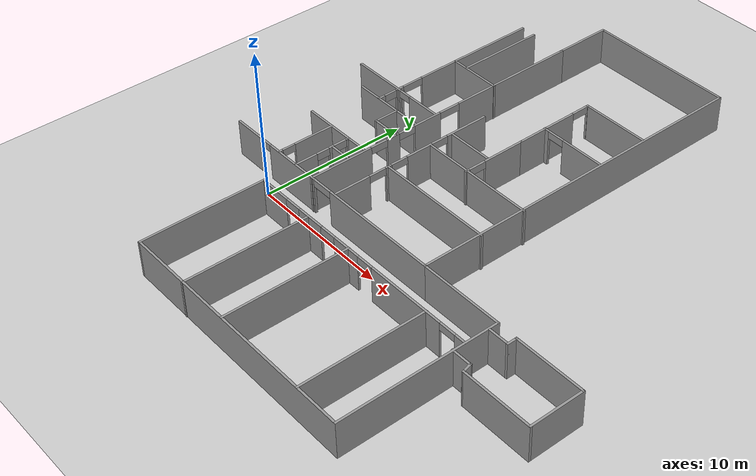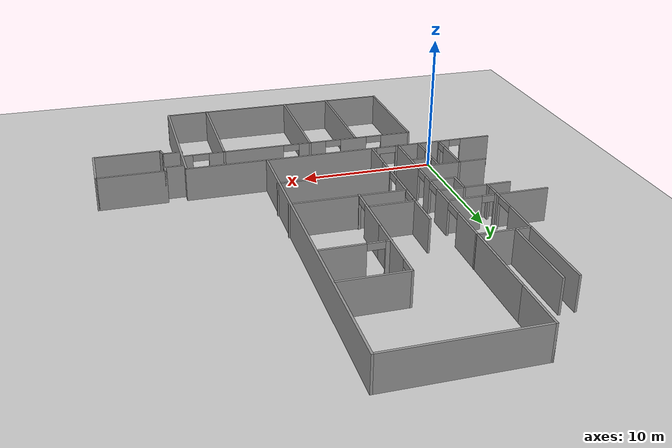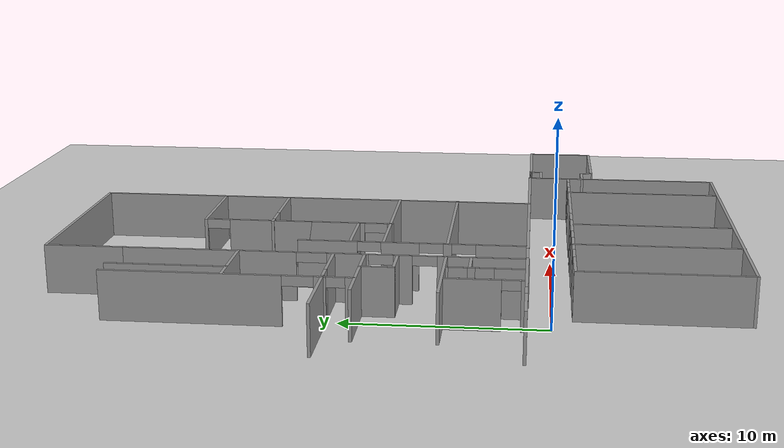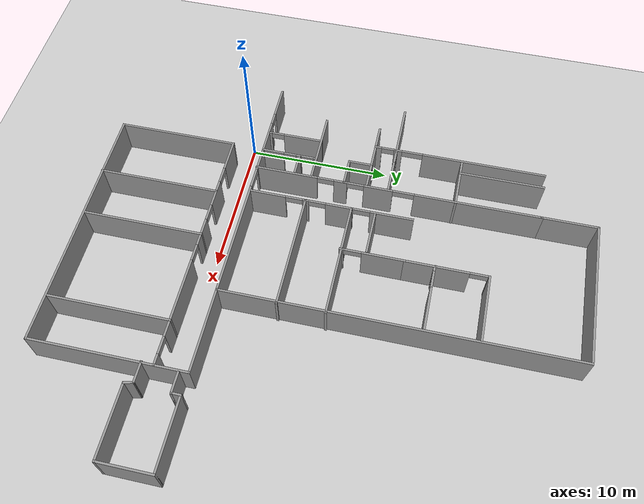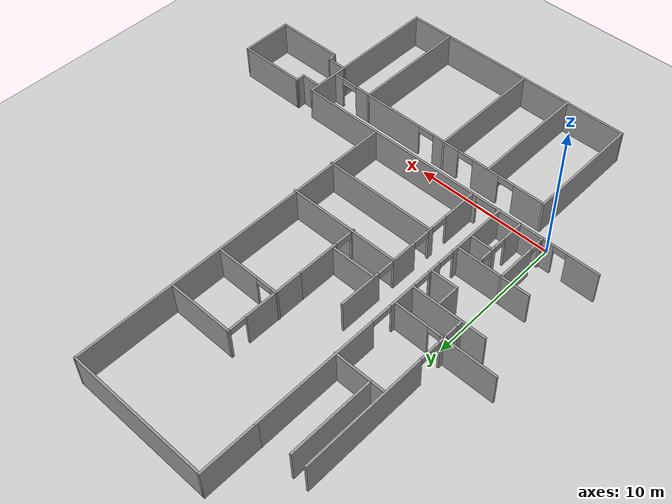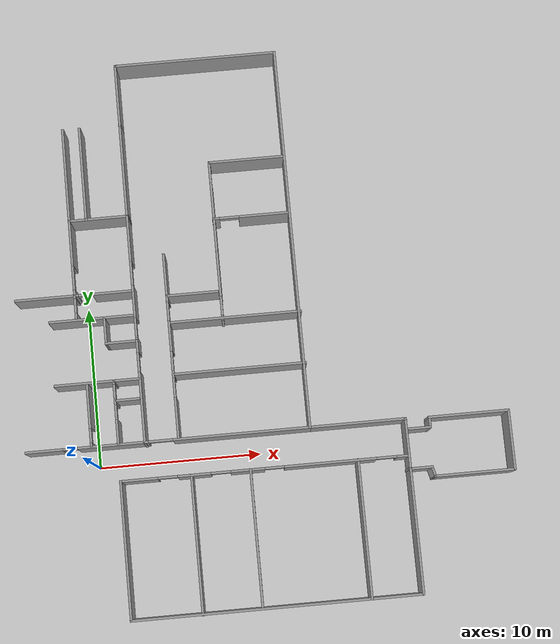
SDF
<sdf version="1.6">
 <world name="default">
  <model name="ground_plane">
   <static>1</static>
   <link name="link">
    <collision name="collision">
     <geometry><plane><normal>0 0 1</normal><size>100 100</size></plane></geometry>
     <surface><friction><ode><mu>100</mu><mu2>50</mu2></ode></friction></surface>
    </collision>
    <visual name="visual">
     <cast_shadows>0</cast_shadows>
     <geometry><plane><normal>0 0 1</normal><size>100 100</size></plane></geometry>
     <material>
      <script><uri>file://media/materials/scripts/gazebo.material</uri><name>Gazebo/Grey</name></script>
     </material>
    </visual>
   </link>
  </model>
  <model name="ed21">
   <pose>2.72337 5.84388 0 0 -0 0</pose>
   <link name="Wall_10">
    <pose>1.71748 -4.65158 0 0 -0 3.14159</pose>
    <visual name="Wall_10_Visual_0">
     <pose>-4.52425 0 1.25 0 -0 0</pose>
     <geometry><box><size>8.4515 0.15 2.5</size></box></geometry>
     <material>
      <script><uri>file://media/materials/scripts/gazebo.material</uri><name>Gazebo/Grey</name></script>
      <ambient>1 1 1 1</ambient>
     </material>
     <meta><layer>0</layer></meta>
    </visual>
    <collision name="Wall_10_Collision_0">
     <geometry><box><size>8.4515 0.15 2.5</size></box></geometry>
     <pose>-4.52425 0 1.25 0 -0 0</pose>
    </collision>
    <visual name="Wall_10_Visual_1">
     <pose>3.36672 0 1.25 0 -0 0</pose>
     <geometry><box><size>4.33043 0.15 2.5</size></box></geometry>
     <material>
      <script><uri>file://media/materials/scripts/gazebo.material</uri><name>Gazebo/Grey</name></script>
      <ambient>1 1 1 1</ambient>
     </material>
     <meta><layer>0</layer></meta>
    </visual>
    <collision name="Wall_10_Collision_1">
     <geometry><box><size>4.33043 0.15 2.5</size></box></geometry>
     <pose>3.36672 0 1.25 0 -0 0</pose>
    </collision>
    <visual name="Wall_10_Visual_2">
     <pose>7.59097 0 1.25 0 -0 0</pose>
     <geometry><box><size>2.31806 0.15 2.5</size></box></geometry>
     <material>
      <script><uri>file://media/materials/scripts/gazebo.material</uri><name>Gazebo/Grey</name></script>
      <ambient>1 1 1 1</ambient>
     </material>
     <meta><layer>0</layer></meta>
    </visual>
    <collision name="Wall_10_Collision_2">
     <geometry><box><size>2.31806 0.15 2.5</size></box></geometry>
     <pose>7.59097 0 1.25 0 -0 0</pose>
    </collision>
    <visual name="Wall_10_Visual_3">
     <pose>0.451502 0 2.25 0 -0 0</pose>
     <geometry><box><size>1.5 0.15 0.5</size></box></geometry>
     <material>
      <script><uri>file://media/materials/scripts/gazebo.material</uri><name>Gazebo/Grey</name></script>
      <ambient>1 1 1 1</ambient>
     </material>
     <meta><layer>0</layer></meta>
    </visual>
    <collision name="Wall_10_Collision_3">
     <geometry><box><size>1.5 0.15 0.5</size></box></geometry>
     <pose>0.451502 0 2.25 0 -0 0</pose>
    </collision>
    <visual name="Wall_10_Visual_4">
     <pose>5.98194 0 2.25 0 -0 0</pose>
     <geometry><box><size>0.9 0.15 0.5</size></box></geometry>
     <material>
      <script><uri>file://media/materials/scripts/gazebo.material</uri><name>Gazebo/Grey</name></script>
      <ambient>1 1 1 1</ambient>
     </material>
     <meta><layer>0</layer></meta>
    </visual>
    <collision name="Wall_10_Collision_4">
     <geometry><box><size>0.9 0.15 0.5</size></box></geometry>
     <pose>5.98194 0 2.25 0 -0 0</pose>
    </collision>
   </link>
   <link name="Wall_101">
    <collision name="Wall_101_Collision">
     <geometry><box><size>5.25 0.15 2.5</size></box></geometry>
     <pose>0 0 1.25 0 -0 0</pose>
    </collision>
    <visual name="Wall_101_Visual">
     <pose>0 0 1.25 0 -0 0</pose>
     <geometry><box><size>5.25 0.15 2.5</size></box></geometry>
     <material>
      <script><uri>file://media/materials/scripts/gazebo.material</uri><name>Gazebo/Grey</name></script>
      <ambient>1 1 1 1</ambient>
     </material>
     <meta><layer>0</layer></meta>
    </visual>
    <pose>-2.36942 -0.737011 0 0 -0 0</pose>
   </link>
   <link name="Wall_103">
    <pose>-1.31646 -2.66201 0 0 0 -1.5708</pose>
    <visual name="Wall_103_Visual_0">
     <pose>-1.85926 0 1.25 0 -0 0</pose>
     <geometry><box><size>0.281471 0.15 2.5</size></box></geometry>
     <material>
      <script><uri>file://media/materials/scripts/gazebo.material</uri><name>Gazebo/Grey</name></script>
      <ambient>1 1 1 1</ambient>
     </material>
     <meta><layer>0</layer></meta>
    </visual>
    <collision name="Wall_103_Collision_0">
     <geometry><box><size>0.281471 0.15 2.5</size></box></geometry>
     <pose>-1.85926 0 1.25 0 -0 0</pose>
    </collision>
    <visual name="Wall_103_Visual_1">
     <pose>-0.633747 0 1.25 0 -0 0</pose>
     <geometry><box><size>0.369565 0.15 2.5</size></box></geometry>
     <material>
      <script><uri>file://media/materials/scripts/gazebo.material</uri><name>Gazebo/Grey</name></script>
      <ambient>1 1 1 1</ambient>
     </material>
     <meta><layer>0</layer></meta>
    </visual>
    <collision name="Wall_103_Collision_1">
     <geometry><box><size>0.369565 0.15 2.5</size></box></geometry>
     <pose>-0.633747 0 1.25 0 -0 0</pose>
    </collision>
    <visual name="Wall_103_Visual_2">
     <pose>1.22552 0 1.25 0 -0 0</pose>
     <geometry><box><size>1.54896 0.15 2.5</size></box></geometry>
     <material>
      <script><uri>file://media/materials/scripts/gazebo.material</uri><name>Gazebo/Grey</name></script>
      <ambient>1 1 1 1</ambient>
     </material>
     <meta><layer>0</layer></meta>
    </visual>
    <collision name="Wall_103_Collision_2">
     <geometry><box><size>1.54896 0.15 2.5</size></box></geometry>
     <pose>1.22552 0 1.25 0 -0 0</pose>
    </collision>
    <visual name="Wall_103_Visual_3">
     <pose>-1.26853 0 2.25 0 -0 0</pose>
     <geometry><box><size>0.9 0.15 0.5</size></box></geometry>
     <material>
      <script><uri>file://media/materials/scripts/gazebo.material</uri><name>Gazebo/Grey</name></script>
      <ambient>1 1 1 1</ambient>
     </material>
     <meta><layer>0</layer></meta>
    </visual>
    <collision name="Wall_103_Collision_3">
     <geometry><box><size>0.9 0.15 0.5</size></box></geometry>
     <pose>-1.26853 0 2.25 0 -0 0</pose>
    </collision>
    <visual name="Wall_103_Visual_4">
     <pose>0.001036 0 2.25 0 -0 0</pose>
     <geometry><box><size>0.9 0.15 0.5</size></box></geometry>
     <material>
      <script><uri>file://media/materials/scripts/gazebo.material</uri><name>Gazebo/Grey</name></script>
      <ambient>1 1 1 1</ambient>
     </material>
     <meta><layer>0</layer></meta>
    </visual>
    <collision name="Wall_103_Collision_4">
     <geometry><box><size>0.9 0.15 0.5</size></box></geometry>
     <pose>0.001036 0 2.25 0 -0 0</pose>
    </collision>
   </link>
   <link name="Wall_105">
    <collision name="Wall_105_Collision">
     <geometry><box><size>1.5 0.15 2.5</size></box></geometry>
     <pose>0 0 1.25 0 -0 0</pose>
    </collision>
    <visual name="Wall_105_Visual">
     <pose>0 0 1.25 0 -0 0</pose>
     <geometry><box><size>1.5 0.15 2.5</size></box></geometry>
     <material>
      <script><uri>file://media/materials/scripts/gazebo.material</uri><name>Gazebo/Grey</name></script>
      <ambient>1 1 1 1</ambient>
     </material>
     <meta><layer>0</layer></meta>
    </visual>
    <pose>-0.536524 -1.96132 0 0 -0 0</pose>
   </link>
   <link name="Wall_107">
    <pose>-2.96053 -2.66201 0 0 0 -1.5708</pose>
    <visual name="Wall_107_Visual_0">
     <pose>-0.577397 0 1.25 0 -0 0</pose>
     <geometry><box><size>2.84521 0.15 2.5</size></box></geometry>
     <material>
      <script><uri>file://media/materials/scripts/gazebo.material</uri><name>Gazebo/Grey</name></script>
      <ambient>1 1 1 1</ambient>
     </material>
     <meta><layer>0</layer></meta>
    </visual>
    <collision name="Wall_107_Collision_0">
     <geometry><box><size>2.84521 0.15 2.5</size></box></geometry>
     <pose>-0.577397 0 1.25 0 -0 0</pose>
    </collision>
    <visual name="Wall_107_Visual_1">
     <pose>1.8726 0 1.25 0 -0 0</pose>
     <geometry><box><size>0.254794 0.15 2.5</size></box></geometry>
     <material>
      <script><uri>file://media/materials/scripts/gazebo.material</uri><name>Gazebo/Grey</name></script>
      <ambient>1 1 1 1</ambient>
     </material>
     <meta><layer>0</layer></meta>
    </visual>
    <collision name="Wall_107_Collision_1">
     <geometry><box><size>0.254794 0.15 2.5</size></box></geometry>
     <pose>1.8726 0 1.25 0 -0 0</pose>
    </collision>
    <visual name="Wall_107_Visual_2">
     <pose>1.29521 0 2.25 0 -0 0</pose>
     <geometry><box><size>0.9 0.15 0.5</size></box></geometry>
     <material>
      <script><uri>file://media/materials/scripts/gazebo.material</uri><name>Gazebo/Grey</name></script>
      <ambient>1 1 1 1</ambient>
     </material>
     <meta><layer>0</layer></meta>
    </visual>
    <collision name="Wall_107_Collision_2">
     <geometry><box><size>0.9 0.15 0.5</size></box></geometry>
     <pose>1.29521 0 2.25 0 -0 0</pose>
    </collision>
   </link>
   <link name="Wall_113">
    <collision name="Wall_113_Collision">
     <geometry><box><size>1.5 0.15 2.5</size></box></geometry>
     <pose>0 0 1.25 0 -0 0</pose>
    </collision>
    <visual name="Wall_113_Visual">
     <pose>0 0 1.25 0 -0 0</pose>
     <geometry><box><size>1.5 0.15 2.5</size></box></geometry>
     <material>
      <script><uri>file://media/materials/scripts/gazebo.material</uri><name>Gazebo/Grey</name></script>
      <ambient>1 1 1 1</ambient>
     </material>
     <meta><layer>0</layer></meta>
    </visual>
    <pose>17.0325 -5.30032 0 0 -0 0</pose>
   </link>
   <link name="Wall_114">
    <collision name="Wall_114_Collision">
     <geometry><box><size>0.75 0.15 2.5</size></box></geometry>
     <pose>0 0 1.25 0 -0 0</pose>
    </collision>
    <visual name="Wall_114_Visual">
     <pose>0 0 1.25 0 -0 0</pose>
     <geometry><box><size>0.75 0.15 2.5</size></box></geometry>
     <material>
      <script><uri>file://media/materials/scripts/gazebo.material</uri><name>Gazebo/Grey</name></script>
      <ambient>1 1 1 1</ambient>
     </material>
     <meta><layer>0</layer></meta>
    </visual>
    <pose>17.7075 -5.00033 0 0 -0 1.5708</pose>
   </link>
   <link name="Wall_115">
    <collision name="Wall_115_Collision">
     <geometry><box><size>5 0.15 2.5</size></box></geometry>
     <pose>0 0 1.25 0 -0 0</pose>
    </collision>
    <visual name="Wall_115_Visual">
     <pose>0 0 1.25 0 -0 0</pose>
     <geometry><box><size>5 0.15 2.5</size></box></geometry>
     <material>
      <script><uri>file://media/materials/scripts/gazebo.material</uri><name>Gazebo/Grey</name></script>
      <ambient>1 1 1 1</ambient>
     </material>
     <meta><layer>0</layer></meta>
    </visual>
    <pose>20.1325 -4.70033 0 0 -0 0</pose>
   </link>
   <link name="Wall_116">
    <collision name="Wall_116_Collision">
     <geometry><box><size>3.75 0.15 2.5</size></box></geometry>
     <pose>0 0 1.25 0 -0 0</pose>
    </collision>
    <visual name="Wall_116_Visual">
     <pose>0 0 1.25 0 -0 0</pose>
     <geometry><box><size>3.75 0.15 2.5</size></box></geometry>
     <material>
      <script><uri>file://media/materials/scripts/gazebo.material</uri><name>Gazebo/Grey</name></script>
      <ambient>1 1 1 1</ambient>
     </material>
     <meta><layer>0</layer></meta>
    </visual>
    <pose>22.5575 -6.50033 0 0 0 -1.5708</pose>
   </link>
   <link name="Wall_12">
    <collision name="Wall_12_Collision">
     <geometry><box><size>6 0.15 2.5</size></box></geometry>
     <pose>0 0 1.25 0 -0 0</pose>
    </collision>
    <visual name="Wall_12_Visual">
     <pose>0 0 1.25 0 -0 0</pose>
     <geometry><box><size>6 0.15 2.5</size></box></geometry>
     <material>
      <script><uri>file://media/materials/scripts/gazebo.material</uri><name>Gazebo/Grey</name></script>
      <ambient>1 1 1 1</ambient>
     </material>
     <meta><layer>0</layer></meta>
    </visual>
    <pose>13.3175 -4.65158 0 0 -0 0</pose>
   </link>
   <link name="Wall_120">
    <collision name="Wall_120_Collision">
     <geometry><box><size>5 0.15 2.5</size></box></geometry>
     <pose>0 0 1.25 0 -0 0</pose>
    </collision>
    <visual name="Wall_120_Visual">
     <pose>0 0 1.25 0 -0 0</pose>
     <geometry><box><size>5 0.15 2.5</size></box></geometry>
     <material>
      <script><uri>file://media/materials/scripts/gazebo.material</uri><name>Gazebo/Grey</name></script>
      <ambient>1 1 1 1</ambient>
     </material>
     <meta><layer>0</layer></meta>
    </visual>
    <pose>20.1325 -8.30033 0 0 -0 3.14159</pose>
   </link>
   <link name="Wall_121">
    <collision name="Wall_121_Collision">
     <geometry><box><size>0.75 0.15 2.5</size></box></geometry>
     <pose>0 0 1.25 0 -0 0</pose>
    </collision>
    <visual name="Wall_121_Visual">
     <pose>0 0 1.25 0 -0 0</pose>
     <geometry><box><size>0.75 0.15 2.5</size></box></geometry>
     <material>
      <script><uri>file://media/materials/scripts/gazebo.material</uri><name>Gazebo/Grey</name></script>
      <ambient>1 1 1 1</ambient>
     </material>
     <meta><layer>0</layer></meta>
    </visual>
    <pose>17.6299 -8.01055 0 0 -0 1.8326</pose>
   </link>
   <link name="Wall_122">
    <collision name="Wall_122_Collision">
     <geometry><box><size>1.5 0.15 2.5</size></box></geometry>
     <pose>0 0 1.25 0 -0 0</pose>
    </collision>
    <visual name="Wall_122_Visual">
     <pose>0 0 1.25 0 -0 0</pose>
     <geometry><box><size>1.5 0.15 2.5</size></box></geometry>
     <material>
      <script><uri>file://media/materials/scripts/gazebo.material</uri><name>Gazebo/Grey</name></script>
      <ambient>1 1 1 1</ambient>
     </material>
     <meta><layer>0</layer></meta>
    </visual>
    <pose>16.8772 -7.72077 0 0 -0 3.14159</pose>
   </link>
   <link name="Wall_13">
    <collision name="Wall_13_Collision">
     <geometry><box><size>10.75 0.15 2.5</size></box></geometry>
     <pose>0 0 1.25 0 -0 0</pose>
    </collision>
    <visual name="Wall_13_Visual">
     <pose>0 0 1.25 0 -0 0</pose>
     <geometry><box><size>10.75 0.15 2.5</size></box></geometry>
     <material>
      <script><uri>file://media/materials/scripts/gazebo.material</uri><name>Gazebo/Grey</name></script>
      <ambient>1 1 1 1</ambient>
     </material>
     <meta><layer>0</layer></meta>
    </visual>
    <pose>16.2425 -9.95158 0 0 0 -1.5708</pose>
   </link>
   <link name="Wall_14">
    <collision name="Wall_14_Collision">
     <geometry><box><size>17.75 0.15 2.5</size></box></geometry>
     <pose>0 0 1.25 0 -0 0</pose>
    </collision>
    <visual name="Wall_14_Visual">
     <pose>0 0 1.25 0 -0 0</pose>
     <geometry><box><size>17.75 0.15 2.5</size></box></geometry>
     <material>
      <script><uri>file://media/materials/scripts/gazebo.material</uri><name>Gazebo/Grey</name></script>
      <ambient>1 1 1 1</ambient>
     </material>
     <meta><layer>0</layer></meta>
    </visual>
    <pose>7.44248 -15.2516 0 0 -0 3.14159</pose>
   </link>
   <link name="Wall_15">
    <collision name="Wall_15_Collision">
     <geometry><box><size>8.50066 0.15 2.5</size></box></geometry>
     <pose>0 0 1.25 0 -0 0</pose>
    </collision>
    <visual name="Wall_15_Visual">
     <pose>0 0 1.25 0 -0 0</pose>
     <geometry><box><size>8.50066 0.15 2.5</size></box></geometry>
     <material>
      <script><uri>file://media/materials/scripts/gazebo.material</uri><name>Gazebo/Grey</name></script>
      <ambient>1 1 1 1</ambient>
     </material>
     <meta><layer>0</layer></meta>
    </visual>
    <pose>-1.35752 -11.0766 0 0 -0 1.5708</pose>
   </link>
   <link name="Wall_16">
    <pose>7.44248 -6.90158 0 0 -0 0</pose>
    <visual name="Wall_16_Visual_0">
     <pose>-7.70401 0 1.25 0 -0 0</pose>
     <geometry><box><size>2.34198 0.15 2.5</size></box></geometry>
     <material>
      <script><uri>file://media/materials/scripts/gazebo.material</uri><name>Gazebo/Grey</name></script>
      <ambient>1 1 1 1</ambient>
     </material>
     <meta><layer>0</layer></meta>
    </visual>
    <collision name="Wall_16_Collision_0">
     <geometry><box><size>2.34198 0.15 2.5</size></box></geometry>
     <pose>-7.70401 0 1.25 0 -0 0</pose>
    </collision>
    <visual name="Wall_16_Visual_1">
     <pose>-4.31563 0 1.25 0 -0 0</pose>
     <geometry><box><size>2.03478 0.15 2.5</size></box></geometry>
     <material>
      <script><uri>file://media/materials/scripts/gazebo.material</uri><name>Gazebo/Grey</name></script>
      <ambient>1 1 1 1</ambient>
     </material>
     <meta><layer>0</layer></meta>
    </visual>
    <collision name="Wall_16_Collision_1">
     <geometry><box><size>2.03478 0.15 2.5</size></box></geometry>
     <pose>-4.31563 0 1.25 0 -0 0</pose>
    </collision>
    <visual name="Wall_16_Visual_2">
     <pose>-1.05511 0 1.25 0 -0 0</pose>
     <geometry><box><size>2.08626 0.15 2.5</size></box></geometry>
     <material>
      <script><uri>file://media/materials/scripts/gazebo.material</uri><name>Gazebo/Grey</name></script>
      <ambient>1 1 1 1</ambient>
     </material>
     <meta><layer>0</layer></meta>
    </visual>
    <collision name="Wall_16_Collision_2">
     <geometry><box><size>2.08626 0.15 2.5</size></box></geometry>
     <pose>-1.05511 0 1.25 0 -0 0</pose>
    </collision>
    <visual name="Wall_16_Visual_3">
     <pose>4.01135 0 1.25 0 -0 0</pose>
     <geometry><box><size>5.64666 0.15 2.5</size></box></geometry>
     <material>
      <script><uri>file://media/materials/scripts/gazebo.material</uri><name>Gazebo/Grey</name></script>
      <ambient>1 1 1 1</ambient>
     </material>
     <meta><layer>0</layer></meta>
    </visual>
    <collision name="Wall_16_Collision_3">
     <geometry><box><size>5.64666 0.15 2.5</size></box></geometry>
     <pose>4.01135 0 1.25 0 -0 0</pose>
    </collision>
    <visual name="Wall_16_Visual_4">
     <pose>8.45484 0 1.25 0 -0 0</pose>
     <geometry><box><size>0.840318 0.15 2.5</size></box></geometry>
     <material>
      <script><uri>file://media/materials/scripts/gazebo.material</uri><name>Gazebo/Grey</name></script>
      <ambient>1 1 1 1</ambient>
     </material>
     <meta><layer>0</layer></meta>
    </visual>
    <collision name="Wall_16_Collision_4">
     <geometry><box><size>0.840318 0.15 2.5</size></box></geometry>
     <pose>8.45484 0 1.25 0 -0 0</pose>
    </collision>
    <visual name="Wall_16_Visual_5">
     <pose>-5.93302 0 2.25 0 -0 0</pose>
     <geometry><box><size>1.2 0.15 0.5</size></box></geometry>
     <material>
      <script><uri>file://media/materials/scripts/gazebo.material</uri><name>Gazebo/Grey</name></script>
      <ambient>1 1 1 1</ambient>
     </material>
     <meta><layer>0</layer></meta>
    </visual>
    <collision name="Wall_16_Collision_5">
     <geometry><box><size>1.2 0.15 0.5</size></box></geometry>
     <pose>-5.93302 0 2.25 0 -0 0</pose>
    </collision>
    <visual name="Wall_16_Visual_6">
     <pose>-2.69824 0 2.25 0 -0 0</pose>
     <geometry><box><size>1.2 0.15 0.5</size></box></geometry>
     <material>
      <script><uri>file://media/materials/scripts/gazebo.material</uri><name>Gazebo/Grey</name></script>
      <ambient>1 1 1 1</ambient>
     </material>
     <meta><layer>0</layer></meta>
    </visual>
    <collision name="Wall_16_Collision_6">
     <geometry><box><size>1.2 0.15 0.5</size></box></geometry>
     <pose>-2.69824 0 2.25 0 -0 0</pose>
    </collision>
    <visual name="Wall_16_Visual_7">
     <pose>0.588022 0 2.25 0 -0 0</pose>
     <geometry><box><size>1.2 0.15 0.5</size></box></geometry>
     <material>
      <script><uri>file://media/materials/scripts/gazebo.material</uri><name>Gazebo/Grey</name></script>
      <ambient>1 1 1 1</ambient>
     </material>
     <meta><layer>0</layer></meta>
    </visual>
    <collision name="Wall_16_Collision_7">
     <geometry><box><size>1.2 0.15 0.5</size></box></geometry>
     <pose>0.588022 0 2.25 0 -0 0</pose>
    </collision>
    <visual name="Wall_16_Visual_8">
     <pose>7.43468 0 2.25 0 -0 0</pose>
     <geometry><box><size>1.2 0.15 0.5</size></box></geometry>
     <material>
      <script><uri>file://media/materials/scripts/gazebo.material</uri><name>Gazebo/Grey</name></script>
      <ambient>1 1 1 1</ambient>
     </material>
     <meta><layer>0</layer></meta>
    </visual>
    <collision name="Wall_16_Collision_8">
     <geometry><box><size>1.2 0.15 0.5</size></box></geometry>
     <pose>7.43468 0 2.25 0 -0 0</pose>
    </collision>
   </link>
   <link name="Wall_25">
    <collision name="Wall_25_Collision">
     <geometry><box><size>8.5 0.15 2.5</size></box></geometry>
     <pose>0 0 1.25 0 -0 0</pose>
    </collision>
    <visual name="Wall_25_Visual">
     <pose>0 0 1.25 0 -0 0</pose>
     <geometry><box><size>8.5 0.15 2.5</size></box></geometry>
     <material>
      <script><uri>file://media/materials/scripts/gazebo.material</uri><name>Gazebo/Grey</name></script>
      <ambient>1 1 1 1</ambient>
     </material>
     <meta><layer>0</layer></meta>
    </visual>
    <pose>2.95111 -11.1035 0 0 0 -1.5708</pose>
   </link>
   <link name="Wall_27">
    <collision name="Wall_27_Collision">
     <geometry><box><size>8.5 0.15 2.5</size></box></geometry>
     <pose>0 0 1.25 0 -0 0</pose>
    </collision>
    <visual name="Wall_27_Visual">
     <pose>0 0 1.25 0 -0 0</pose>
     <geometry><box><size>8.5 0.15 2.5</size></box></geometry>
     <material>
      <script><uri>file://media/materials/scripts/gazebo.material</uri><name>Gazebo/Grey</name></script>
      <ambient>1 1 1 1</ambient>
     </material>
     <meta><layer>0</layer></meta>
    </visual>
    <pose>6.55406 -11.0685 0 0 0 -1.5708</pose>
   </link>
   <link name="Wall_29">
    <collision name="Wall_29_Collision">
     <geometry><box><size>8.5 0.15 2.5</size></box></geometry>
     <pose>0 0 1.25 0 -0 0</pose>
    </collision>
    <visual name="Wall_29_Visual">
     <pose>0 0 1.25 0 -0 0</pose>
     <geometry><box><size>8.5 0.15 2.5</size></box></geometry>
     <material>
      <script><uri>file://media/materials/scripts/gazebo.material</uri><name>Gazebo/Grey</name></script>
      <ambient>1 1 1 1</ambient>
     </material>
     <meta><layer>0</layer></meta>
    </visual>
    <pose>13.1303 -11.0685 0 0 0 -1.5708</pose>
   </link>
   <link name="Wall_56">
    <pose>5.67212 9.6187 0 0 -0 1.5708</pose>
    <visual name="Wall_56_Visual_0">
     <pose>-0.683725 0 1.25 0 -0 0</pose>
     <geometry><box><size>4.38255 0.15 2.5</size></box></geometry>
     <material>
      <script><uri>file://media/materials/scripts/gazebo.material</uri><name>Gazebo/Grey</name></script>
      <ambient>1 1 1 1</ambient>
     </material>
     <meta><layer>0</layer></meta>
    </visual>
    <collision name="Wall_56_Collision_0">
     <geometry><box><size>4.38255 0.15 2.5</size></box></geometry>
     <pose>-0.683725 0 1.25 0 -0 0</pose>
    </collision>
    <visual name="Wall_56_Visual_1">
     <pose>2.79128 0 1.25 0 -0 0</pose>
     <geometry><box><size>0.16745 0.15 2.5</size></box></geometry>
     <material>
      <script><uri>file://media/materials/scripts/gazebo.material</uri><name>Gazebo/Grey</name></script>
      <ambient>1 1 1 1</ambient>
     </material>
     <meta><layer>0</layer></meta>
    </visual>
    <collision name="Wall_56_Collision_1">
     <geometry><box><size>0.16745 0.15 2.5</size></box></geometry>
     <pose>2.79128 0 1.25 0 -0 0</pose>
    </collision>
    <visual name="Wall_56_Visual_2">
     <pose>2.10755 0 2.25 0 -0 0</pose>
     <geometry><box><size>1.2 0.15 0.5</size></box></geometry>
     <material>
      <script><uri>file://media/materials/scripts/gazebo.material</uri><name>Gazebo/Grey</name></script>
      <ambient>1 1 1 1</ambient>
     </material>
     <meta><layer>0</layer></meta>
    </visual>
    <collision name="Wall_56_Collision_2">
     <geometry><box><size>1.2 0.15 0.5</size></box></geometry>
     <pose>2.10755 0 2.25 0 -0 0</pose>
    </collision>
   </link>
   <link name="Wall_57">
    <collision name="Wall_57_Collision">
     <geometry><box><size>4.75 0.15 2.5</size></box></geometry>
     <pose>0 0 1.25 0 -0 0</pose>
    </collision>
    <visual name="Wall_57_Visual">
     <pose>0 0 1.25 0 -0 0</pose>
     <geometry><box><size>4.75 0.15 2.5</size></box></geometry>
     <material>
      <script><uri>file://media/materials/scripts/gazebo.material</uri><name>Gazebo/Grey</name></script>
      <ambient>1 1 1 1</ambient>
     </material>
     <meta><layer>0</layer></meta>
    </visual>
    <pose>7.97212 12.4187 0 0 -0 0</pose>
   </link>
   <link name="Wall_59">
    <pose>7.94458 8.81256 0 0 -0 0</pose>
    <visual name="Wall_59_Visual_0">
     <pose>-2.14502 0 1.25 0 -0 0</pose>
     <geometry><box><size>0.45996 0.15 2.5</size></box></geometry>
     <material>
      <script><uri>file://media/materials/scripts/gazebo.material</uri><name>Gazebo/Grey</name></script>
      <ambient>1 1 1 1</ambient>
     </material>
     <meta><layer>0</layer></meta>
    </visual>
    <collision name="Wall_59_Collision_0">
     <geometry><box><size>0.45996 0.15 2.5</size></box></geometry>
     <pose>-2.14502 0 1.25 0 -0 0</pose>
    </collision>
    <visual name="Wall_59_Visual_1">
     <pose>0.82998 0 1.25 0 -0 0</pose>
     <geometry><box><size>3.09004 0.15 2.5</size></box></geometry>
     <material>
      <script><uri>file://media/materials/scripts/gazebo.material</uri><name>Gazebo/Grey</name></script>
      <ambient>1 1 1 1</ambient>
     </material>
     <meta><layer>0</layer></meta>
    </visual>
    <collision name="Wall_59_Collision_1">
     <geometry><box><size>3.09004 0.15 2.5</size></box></geometry>
     <pose>0.82998 0 1.25 0 -0 0</pose>
    </collision>
    <visual name="Wall_59_Visual_2">
     <pose>-1.31504 0 2.25 0 -0 0</pose>
     <geometry><box><size>1.2 0.15 0.5</size></box></geometry>
     <material>
      <script><uri>file://media/materials/scripts/gazebo.material</uri><name>Gazebo/Grey</name></script>
      <ambient>1 1 1 1</ambient>
     </material>
     <meta><layer>0</layer></meta>
    </visual>
    <collision name="Wall_59_Collision_2">
     <geometry><box><size>1.2 0.15 0.5</size></box></geometry>
     <pose>-1.31504 0 2.25 0 -0 0</pose>
    </collision>
   </link>
   <link name="Wall_61">
    <pose>2.35645 1.1437 0 0 0 -1.5708</pose>
    <visual name="Wall_61_Visual_0">
     <pose>-4.23685 0 1.25 0 -0 0</pose>
     <geometry><box><size>3.02631 0.15 2.5</size></box></geometry>
     <material>
      <script><uri>file://media/materials/scripts/gazebo.material</uri><name>Gazebo/Grey</name></script>
      <ambient>1 1 1 1</ambient>
     </material>
     <meta><layer>0</layer></meta>
    </visual>
    <collision name="Wall_61_Collision_0">
     <geometry><box><size>3.02631 0.15 2.5</size></box></geometry>
     <pose>-4.23685 0 1.25 0 -0 0</pose>
    </collision>
    <visual name="Wall_61_Visual_1">
     <pose>-0.56717 0 1.25 0 -0 0</pose>
     <geometry><box><size>1.91304 0.15 2.5</size></box></geometry>
     <material>
      <script><uri>file://media/materials/scripts/gazebo.material</uri><name>Gazebo/Grey</name></script>
      <ambient>1 1 1 1</ambient>
     </material>
     <meta><layer>0</layer></meta>
    </visual>
    <collision name="Wall_61_Collision_1">
     <geometry><box><size>1.91304 0.15 2.5</size></box></geometry>
     <pose>-0.56717 0 1.25 0 -0 0</pose>
    </collision>
    <visual name="Wall_61_Visual_2">
     <pose>1.80674 0 1.25 0 -0 0</pose>
     <geometry><box><size>0.434783 0.15 2.5</size></box></geometry>
     <material>
      <script><uri>file://media/materials/scripts/gazebo.material</uri><name>Gazebo/Grey</name></script>
      <ambient>1 1 1 1</ambient>
     </material>
     <meta><layer>0</layer></meta>
    </visual>
    <collision name="Wall_61_Collision_2">
     <geometry><box><size>0.434783 0.15 2.5</size></box></geometry>
     <pose>1.80674 0 1.25 0 -0 0</pose>
    </collision>
    <visual name="Wall_61_Visual_3">
     <pose>4.48707 0 1.25 0 -0 0</pose>
     <geometry><box><size>2.52587 0.15 2.5</size></box></geometry>
     <material>
      <script><uri>file://media/materials/scripts/gazebo.material</uri><name>Gazebo/Grey</name></script>
      <ambient>1 1 1 1</ambient>
     </material>
     <meta><layer>0</layer></meta>
    </visual>
    <collision name="Wall_61_Collision_3">
     <geometry><box><size>2.52587 0.15 2.5</size></box></geometry>
     <pose>4.48707 0 1.25 0 -0 0</pose>
    </collision>
    <visual name="Wall_61_Visual_4">
     <pose>-2.12369 0 2.25 0 -0 0</pose>
     <geometry><box><size>1.2 0.15 0.5</size></box></geometry>
     <material>
      <script><uri>file://media/materials/scripts/gazebo.material</uri><name>Gazebo/Grey</name></script>
      <ambient>1 1 1 1</ambient>
     </material>
     <meta><layer>0</layer></meta>
    </visual>
    <collision name="Wall_61_Collision_4">
     <geometry><box><size>1.2 0.15 0.5</size></box></geometry>
     <pose>-2.12369 0 2.25 0 -0 0</pose>
    </collision>
    <visual name="Wall_61_Visual_5">
     <pose>0.989352 0 2.25 0 -0 0</pose>
     <geometry><box><size>1.2 0.15 0.5</size></box></geometry>
     <material>
      <script><uri>file://media/materials/scripts/gazebo.material</uri><name>Gazebo/Grey</name></script>
      <ambient>1 1 1 1</ambient>
     </material>
     <meta><layer>0</layer></meta>
    </visual>
    <collision name="Wall_61_Collision_5">
     <geometry><box><size>1.2 0.15 0.5</size></box></geometry>
     <pose>0.989352 0 2.25 0 -0 0</pose>
    </collision>
    <visual name="Wall_61_Visual_6">
     <pose>2.62413 0 2.25 0 -0 0</pose>
     <geometry><box><size>1.2 0.15 0.5</size></box></geometry>
     <material>
      <script><uri>file://media/materials/scripts/gazebo.material</uri><name>Gazebo/Grey</name></script>
      <ambient>1 1 1 1</ambient>
     </material>
     <meta><layer>0</layer></meta>
    </visual>
    <collision name="Wall_61_Collision_6">
     <geometry><box><size>1.2 0.15 0.5</size></box></geometry>
     <pose>2.62413 0 2.25 0 -0 0</pose>
    </collision>
   </link>
   <link name="Wall_63">
    <collision name="Wall_63_Collision">
     <geometry><box><size>8.25 0.15 2.5</size></box></geometry>
     <pose>0 0 1.25 0 -0 0</pose>
    </collision>
    <visual name="Wall_63_Visual">
     <pose>0 0 1.25 0 -0 0</pose>
     <geometry><box><size>8.25 0.15 2.5</size></box></geometry>
     <material>
      <script><uri>file://media/materials/scripts/gazebo.material</uri><name>Gazebo/Grey</name></script>
      <ambient>1 1 1 1</ambient>
     </material>
     <meta><layer>0</layer></meta>
    </visual>
    <pose>6.44143 -0.667051 0 0 -0 0</pose>
   </link>
   <link name="Wall_65">
    <collision name="Wall_65_Collision">
     <geometry><box><size>8.25 0.15 2.5</size></box></geometry>
     <pose>0 0 1.25 0 -0 0</pose>
    </collision>
    <visual name="Wall_65_Visual">
     <pose>0 0 1.25 0 -0 0</pose>
     <geometry><box><size>8.25 0.15 2.5</size></box></geometry>
     <material>
      <script><uri>file://media/materials/scripts/gazebo.material</uri><name>Gazebo/Grey</name></script>
      <ambient>1 1 1 1</ambient>
     </material>
     <meta><layer>0</layer></meta>
    </visual>
    <pose>6.44143 2.55112 0 0 -0 0</pose>
   </link>
   <link name="Wall_67">
    <pose>5.67212 4.6437 0 0 0 -1.5708</pose>
    <visual name="Wall_67_Visual_0">
     <pose>-0.762933 0 1.25 0 -0 0</pose>
     <geometry><box><size>2.97413 0.15 2.5</size></box></geometry>
     <material>
      <script><uri>file://media/materials/scripts/gazebo.material</uri><name>Gazebo/Grey</name></script>
      <ambient>1 1 1 1</ambient>
     </material>
     <meta><layer>0</layer></meta>
    </visual>
    <collision name="Wall_67_Collision_0">
     <geometry><box><size>2.97413 0.15 2.5</size></box></geometry>
     <pose>-0.762933 0 1.25 0 -0 0</pose>
    </collision>
    <visual name="Wall_67_Visual_1">
     <pose>2.08707 0 1.25 0 -0 0</pose>
     <geometry><box><size>0.325865 0.15 2.5</size></box></geometry>
     <material>
      <script><uri>file://media/materials/scripts/gazebo.material</uri><name>Gazebo/Grey</name></script>
      <ambient>1 1 1 1</ambient>
     </material>
     <meta><layer>0</layer></meta>
    </visual>
    <collision name="Wall_67_Collision_1">
     <geometry><box><size>0.325865 0.15 2.5</size></box></geometry>
     <pose>2.08707 0 1.25 0 -0 0</pose>
    </collision>
    <visual name="Wall_67_Visual_2">
     <pose>1.32414 0 2.25 0 -0 0</pose>
     <geometry><box><size>1.2 0.15 0.5</size></box></geometry>
     <material>
      <script><uri>file://media/materials/scripts/gazebo.material</uri><name>Gazebo/Grey</name></script>
      <ambient>1 1 1 1</ambient>
     </material>
     <meta><layer>0</layer></meta>
    </visual>
    <collision name="Wall_67_Collision_2">
     <geometry><box><size>1.2 0.15 0.5</size></box></geometry>
     <pose>1.32414 0 2.25 0 -0 0</pose>
    </collision>
   </link>
   <link name="Wall_69">
    <collision name="Wall_69_Collision">
     <geometry><box><size>3.25 0.15 2.5</size></box></geometry>
     <pose>0 0 1.25 0 -0 0</pose>
    </collision>
    <visual name="Wall_69_Visual">
     <pose>0 0 1.25 0 -0 0</pose>
     <geometry><box><size>3.25 0.15 2.5</size></box></geometry>
     <material>
      <script><uri>file://media/materials/scripts/gazebo.material</uri><name>Gazebo/Grey</name></script>
      <ambient>1 1 1 1</ambient>
     </material>
     <meta><layer>0</layer></meta>
    </visual>
    <pose>3.94143 4.23017 0 0 -0 0</pose>
   </link>
   <link name="Wall_7">
    <collision name="Wall_7_Collision">
     <geometry><box><size>4 0.15 2.5</size></box></geometry>
     <pose>0 0 1.25 0 -0 0</pose>
    </collision>
    <visual name="Wall_7_Visual">
     <pose>0 0 1.25 0 -0 0</pose>
     <geometry><box><size>4 0.15 2.5</size></box></geometry>
     <material>
      <script><uri>file://media/materials/scripts/gazebo.material</uri><name>Gazebo/Grey</name></script>
      <ambient>1 1 1 1</ambient>
     </material>
     <meta><layer>0</layer></meta>
    </visual>
    <pose>0.29248 17.2734 0 0 -0 1.5708</pose>
   </link>
   <link name="Wall_71">
    <pose>0.292622 5.36024 0 0 -0 1.5708</pose>
    <visual name="Wall_71_Visual_0">
     <pose>-7.89588 0 1.25 0 -0 0</pose>
     <geometry><box><size>4.45824 0.15 2.5</size></box></geometry>
     <material>
      <script><uri>file://media/materials/scripts/gazebo.material</uri><name>Gazebo/Grey</name></script>
      <ambient>1 1 1 1</ambient>
     </material>
     <meta><layer>0</layer></meta>
    </visual>
    <collision name="Wall_71_Collision_0">
     <geometry><box><size>4.45824 0.15 2.5</size></box></geometry>
     <pose>-7.89588 0 1.25 0 -0 0</pose>
    </collision>
    <visual name="Wall_71_Visual_1">
     <pose>-3.9972 0 1.25 0 -0 0</pose>
     <geometry><box><size>0.939131 0.15 2.5</size></box></geometry>
     <material>
      <script><uri>file://media/materials/scripts/gazebo.material</uri><name>Gazebo/Grey</name></script>
      <ambient>1 1 1 1</ambient>
     </material>
     <meta><layer>0</layer></meta>
    </visual>
    <collision name="Wall_71_Collision_1">
     <geometry><box><size>0.939131 0.15 2.5</size></box></geometry>
     <pose>-3.9972 0 1.25 0 -0 0</pose>
    </collision>
    <visual name="Wall_71_Visual_2">
     <pose>-1.30364 0 1.25 0 -0 0</pose>
     <geometry><box><size>2.04799 0.15 2.5</size></box></geometry>
     <material>
      <script><uri>file://media/materials/scripts/gazebo.material</uri><name>Gazebo/Grey</name></script>
      <ambient>1 1 1 1</ambient>
     </material>
     <meta><layer>0</layer></meta>
    </visual>
    <collision name="Wall_71_Collision_2">
     <geometry><box><size>2.04799 0.15 2.5</size></box></geometry>
     <pose>-1.30364 0 1.25 0 -0 0</pose>
    </collision>
    <visual name="Wall_71_Visual_3">
     <pose>5.67268 0 1.25 0 -0 0</pose>
     <geometry><box><size>8.90464 0.15 2.5</size></box></geometry>
     <material>
      <script><uri>file://media/materials/scripts/gazebo.material</uri><name>Gazebo/Grey</name></script>
      <ambient>1 1 1 1</ambient>
     </material>
     <meta><layer>0</layer></meta>
    </visual>
    <collision name="Wall_71_Collision_3">
     <geometry><box><size>8.90464 0.15 2.5</size></box></geometry>
     <pose>5.67268 0 1.25 0 -0 0</pose>
    </collision>
    <visual name="Wall_71_Visual_4">
     <pose>-5.06676 0 2.25 0 -0 0</pose>
     <geometry><box><size>1.2 0.15 0.5</size></box></geometry>
     <material>
      <script><uri>file://media/materials/scripts/gazebo.material</uri><name>Gazebo/Grey</name></script>
      <ambient>1 1 1 1</ambient>
     </material>
     <meta><layer>0</layer></meta>
    </visual>
    <collision name="Wall_71_Collision_4">
     <geometry><box><size>1.2 0.15 0.5</size></box></geometry>
     <pose>-5.06676 0 2.25 0 -0 0</pose>
    </collision>
    <visual name="Wall_71_Visual_5">
     <pose>-2.92763 0 2.25 0 -0 0</pose>
     <geometry><box><size>1.2 0.15 0.5</size></box></geometry>
     <material>
      <script><uri>file://media/materials/scripts/gazebo.material</uri><name>Gazebo/Grey</name></script>
      <ambient>1 1 1 1</ambient>
     </material>
     <meta><layer>0</layer></meta>
    </visual>
    <collision name="Wall_71_Collision_5">
     <geometry><box><size>1.2 0.15 0.5</size></box></geometry>
     <pose>-2.92763 0 2.25 0 -0 0</pose>
    </collision>
    <visual name="Wall_71_Visual_6">
     <pose>0.470358 0 2.25 0 -0 0</pose>
     <geometry><box><size>1.5 0.15 0.5</size></box></geometry>
     <material>
      <script><uri>file://media/materials/scripts/gazebo.material</uri><name>Gazebo/Grey</name></script>
      <ambient>1 1 1 1</ambient>
     </material>
     <meta><layer>0</layer></meta>
    </visual>
    <collision name="Wall_71_Collision_6">
     <geometry><box><size>1.5 0.15 0.5</size></box></geometry>
     <pose>0.470358 0 2.25 0 -0 0</pose>
    </collision>
   </link>
   <link name="Wall_79">
    <pose>-3.31033 9.26887 0 0 0 -1.5708</pose>
    <visual name="Wall_79_Visual_0">
     <pose>-1.74445 0 1.25 0 -0 0</pose>
     <geometry><box><size>8.7611 0.15 2.5</size></box></geometry>
     <material>
      <script><uri>file://media/materials/scripts/gazebo.material</uri><name>Gazebo/Grey</name></script>
      <ambient>1 1 1 1</ambient>
     </material>
     <meta><layer>0</layer></meta>
    </visual>
    <collision name="Wall_79_Collision_0">
     <geometry><box><size>8.7611 0.15 2.5</size></box></geometry>
     <pose>-1.74445 0 1.25 0 -0 0</pose>
    </collision>
    <visual name="Wall_79_Visual_1">
     <pose>4.42306 0 1.25 0 -0 0</pose>
     <geometry><box><size>0.573913 0.15 2.5</size></box></geometry>
     <material>
      <script><uri>file://media/materials/scripts/gazebo.material</uri><name>Gazebo/Grey</name></script>
      <ambient>1 1 1 1</ambient>
     </material>
     <meta><layer>0</layer></meta>
    </visual>
    <collision name="Wall_79_Collision_1">
     <geometry><box><size>0.573913 0.15 2.5</size></box></geometry>
     <pose>4.42306 0 1.25 0 -0 0</pose>
    </collision>
    <visual name="Wall_79_Visual_2">
     <pose>5.86751 0 1.25 0 -0 0</pose>
     <geometry><box><size>0.514987 0.15 2.5</size></box></geometry>
     <material>
      <script><uri>file://media/materials/scripts/gazebo.material</uri><name>Gazebo/Grey</name></script>
      <ambient>1 1 1 1</ambient>
     </material>
     <meta><layer>0</layer></meta>
    </visual>
    <collision name="Wall_79_Collision_2">
     <geometry><box><size>0.514987 0.15 2.5</size></box></geometry>
     <pose>5.86751 0 1.25 0 -0 0</pose>
    </collision>
    <visual name="Wall_79_Visual_3">
     <pose>3.3861 0 2.25 0 -0 0</pose>
     <geometry><box><size>1.5 0.15 0.5</size></box></geometry>
     <material>
      <script><uri>file://media/materials/scripts/gazebo.material</uri><name>Gazebo/Grey</name></script>
      <ambient>1 1 1 1</ambient>
     </material>
     <meta><layer>0</layer></meta>
    </visual>
    <collision name="Wall_79_Collision_3">
     <geometry><box><size>1.5 0.15 0.5</size></box></geometry>
     <pose>3.3861 0 2.25 0 -0 0</pose>
    </collision>
    <visual name="Wall_79_Visual_4">
     <pose>5.16001 0 2.25 0 -0 0</pose>
     <geometry><box><size>0.9 0.15 0.5</size></box></geometry>
     <material>
      <script><uri>file://media/materials/scripts/gazebo.material</uri><name>Gazebo/Grey</name></script>
      <ambient>1 1 1 1</ambient>
     </material>
     <meta><layer>0</layer></meta>
    </visual>
    <collision name="Wall_79_Collision_4">
     <geometry><box><size>0.9 0.15 0.5</size></box></geometry>
     <pose>5.16001 0 2.25 0 -0 0</pose>
    </collision>
   </link>
   <link name="Wall_8">
    <collision name="Wall_8_Collision">
     <geometry><box><size>10.25 0.15 2.5</size></box></geometry>
     <pose>0 0 1.25 0 -0 0</pose>
    </collision>
    <visual name="Wall_8_Visual">
     <pose>0 0 1.25 0 -0 0</pose>
     <geometry><box><size>10.25 0.15 2.5</size></box></geometry>
     <material>
      <script><uri>file://media/materials/scripts/gazebo.material</uri><name>Gazebo/Grey</name></script>
      <ambient>1 1 1 1</ambient>
     </material>
     <meta><layer>0</layer></meta>
    </visual>
    <pose>5.34248 19.1984 0 0 -0 0</pose>
   </link>
   <link name="Wall_81">
    <collision name="Wall_81_Collision">
     <geometry><box><size>3.75 0.15 2.5</size></box></geometry>
     <pose>0 0 1.25 0 -0 0</pose>
    </collision>
    <visual name="Wall_81_Visual">
     <pose>0 0 1.25 0 -0 0</pose>
     <geometry><box><size>3.75 0.15 2.5</size></box></geometry>
     <material>
      <script><uri>file://media/materials/scripts/gazebo.material</uri><name>Gazebo/Grey</name></script>
      <ambient>1 1 1 1</ambient>
     </material>
     <meta><layer>0</layer></meta>
    </visual>
    <pose>-1.47535 9.47719 0 0 -0 0</pose>
   </link>
   <link name="Wall_83">
    <collision name="Wall_83_Collision">
     <geometry><box><size>6 0.15 2.5</size></box></geometry>
     <pose>0 0 1.25 0 -0 0</pose>
    </collision>
    <visual name="Wall_83_Visual">
     <pose>0 0 1.25 0 -0 0</pose>
     <geometry><box><size>6 0.15 2.5</size></box></geometry>
     <material>
      <script><uri>file://media/materials/scripts/gazebo.material</uri><name>Gazebo/Grey</name></script>
      <ambient>1 1 1 1</ambient>
     </material>
     <meta><layer>0</layer></meta>
    </visual>
    <pose>-2.26093 12.4022 0 0 -0 1.5708</pose>
   </link>
   <link name="Wall_9">
    <collision name="Wall_9_Collision">
     <geometry><box><size>24 0.15 2.5</size></box></geometry>
     <pose>0 0 1.25 0 -0 0</pose>
    </collision>
    <visual name="Wall_9_Visual">
     <pose>0 0 1.25 0 -0 0</pose>
     <geometry><box><size>24 0.15 2.5</size></box></geometry>
     <material>
      <script><uri>file://media/materials/scripts/gazebo.material</uri><name>Gazebo/Grey</name></script>
      <ambient>1 1 1 1</ambient>
     </material>
     <meta><layer>0</layer></meta>
    </visual>
    <pose>10.3925 7.27342 0 0 0 -1.5708</pose>
   </link>
   <link name="Wall_92">
    <pose>-3.40752 4.74842 0 0 -0 0</pose>
    <visual name="Wall_92_Visual_0">
     <pose>-1.65375 0 1.25 0 -0 0</pose>
     <geometry><box><size>3.9425 0.15 2.5</size></box></geometry>
     <material>
      <script><uri>file://media/materials/scripts/gazebo.material</uri><name>Gazebo/Grey</name></script>
      <ambient>1 1 1 1</ambient>
     </material>
     <meta><layer>0</layer></meta>
    </visual>
    <collision name="Wall_92_Collision_0">
     <geometry><box><size>3.9425 0.15 2.5</size></box></geometry>
     <pose>-1.65375 0 1.25 0 -0 0</pose>
    </collision>
    <visual name="Wall_92_Visual_1">
     <pose>2.42125 0 1.25 0 -0 0</pose>
     <geometry><box><size>2.4075 0.15 2.5</size></box></geometry>
     <material>
      <script><uri>file://media/materials/scripts/gazebo.material</uri><name>Gazebo/Grey</name></script>
      <ambient>1 1 1 1</ambient>
     </material>
     <meta><layer>0</layer></meta>
    </visual>
    <collision name="Wall_92_Collision_1">
     <geometry><box><size>2.4075 0.15 2.5</size></box></geometry>
     <pose>2.42125 0 1.25 0 -0 0</pose>
    </collision>
    <visual name="Wall_92_Visual_2">
     <pose>0.767496 0 2.25 0 -0 0</pose>
     <geometry><box><size>0.9 0.15 0.5</size></box></geometry>
     <material>
      <script><uri>file://media/materials/scripts/gazebo.material</uri><name>Gazebo/Grey</name></script>
      <ambient>1 1 1 1</ambient>
     </material>
     <meta><layer>0</layer></meta>
    </visual>
    <collision name="Wall_92_Collision_2">
     <geometry><box><size>0.9 0.15 0.5</size></box></geometry>
     <pose>0.767496 0 2.25 0 -0 0</pose>
    </collision>
   </link>
   <link name="Wall_96">
    <collision name="Wall_96_Collision">
     <geometry><box><size>5.25 0.15 2.5</size></box></geometry>
     <pose>0 0 1.25 0 -0 0</pose>
    </collision>
    <visual name="Wall_96_Visual">
     <pose>0 0 1.25 0 -0 0</pose>
     <geometry><box><size>5.25 0.15 2.5</size></box></geometry>
     <material>
      <script><uri>file://media/materials/scripts/gazebo.material</uri><name>Gazebo/Grey</name></script>
      <ambient>1 1 1 1</ambient>
     </material>
     <meta><layer>0</layer></meta>
    </visual>
    <pose>-2.4044 3.21574 0 0 -0 0</pose>
   </link>
   <link name="Wall_98">
    <collision name="Wall_98_Collision">
     <geometry><box><size>1.75 0.15 2.5</size></box></geometry>
     <pose>0 0 1.25 0 -0 0</pose>
    </collision>
    <visual name="Wall_98_Visual">
     <pose>0 0 1.25 0 -0 0</pose>
     <geometry><box><size>1.75 0.15 2.5</size></box></geometry>
     <material>
      <script><uri>file://media/materials/scripts/gazebo.material</uri><name>Gazebo/Grey</name></script>
      <ambient>1 1 1 1</ambient>
     </material>
     <meta><layer>0</layer></meta>
    </visual>
    <pose>-1.59631 2.41574 0 0 0 -1.5708</pose>
   </link>
   <link name="Wall_99">
    <collision name="Wall_99_Collision">
     <geometry><box><size>2 0.15 2.5</size></box></geometry>
     <pose>0 0 1.25 0 -0 0</pose>
    </collision>
    <visual name="Wall_99_Visual">
     <pose>0 0 1.25 0 -0 0</pose>
     <geometry><box><size>2 0.15 2.5</size></box></geometry>
     <material>
      <script><uri>file://media/materials/scripts/gazebo.material</uri><name>Gazebo/Grey</name></script>
      <ambient>1 1 1 1</ambient>
     </material>
     <meta><layer>0</layer></meta>
    </visual>
    <pose>-0.671305 1.61574 0 0 -0 0</pose>
   </link>
   <static>1</static>
  </model>
 </world>
</sdf>
